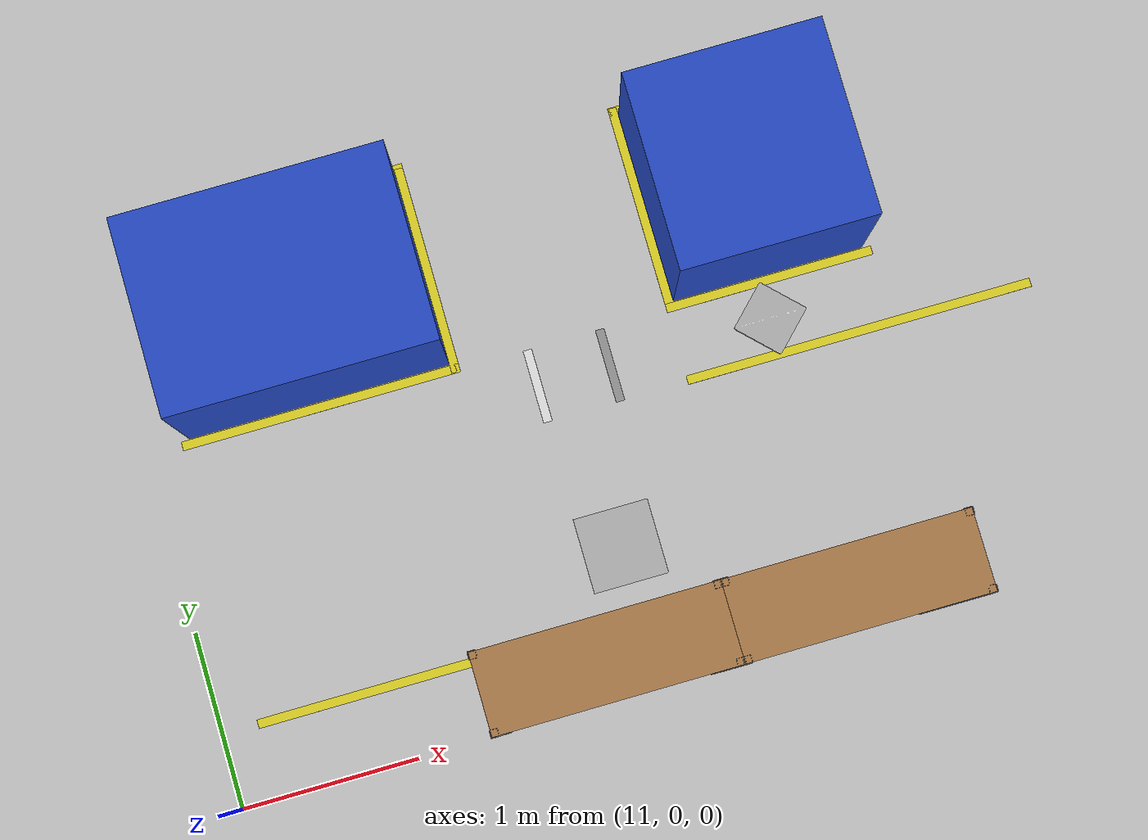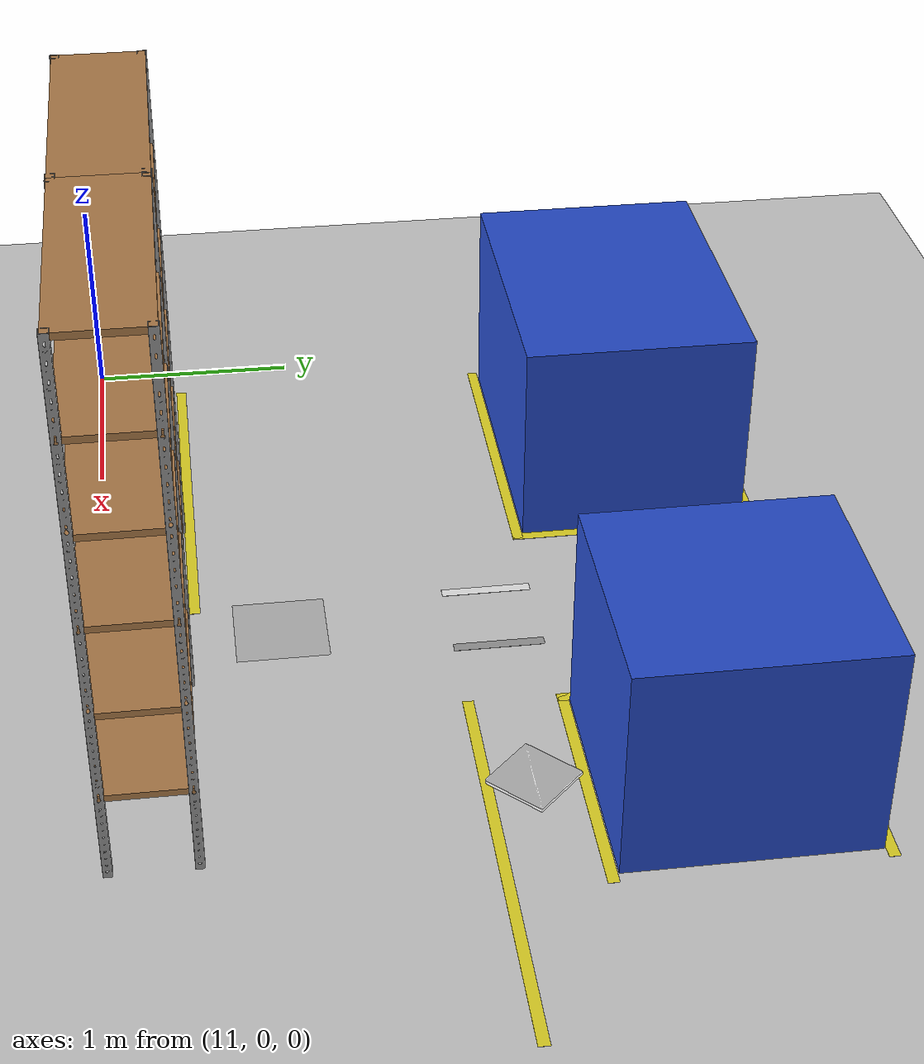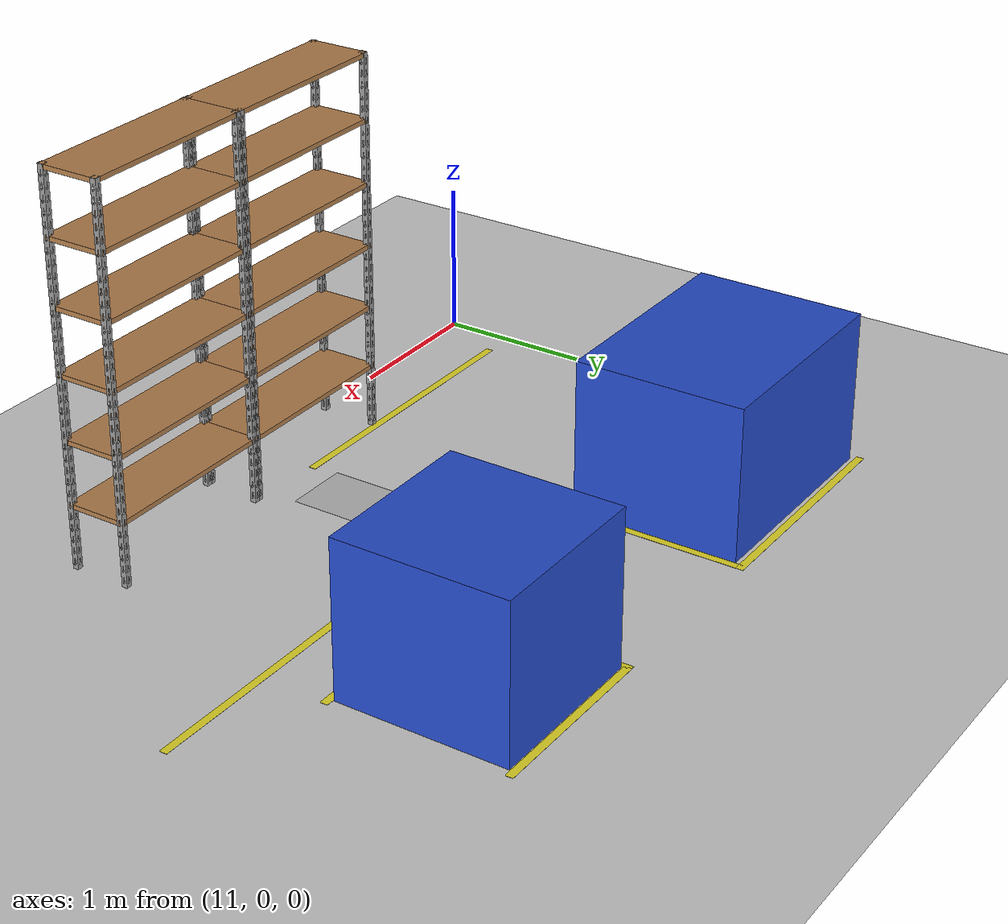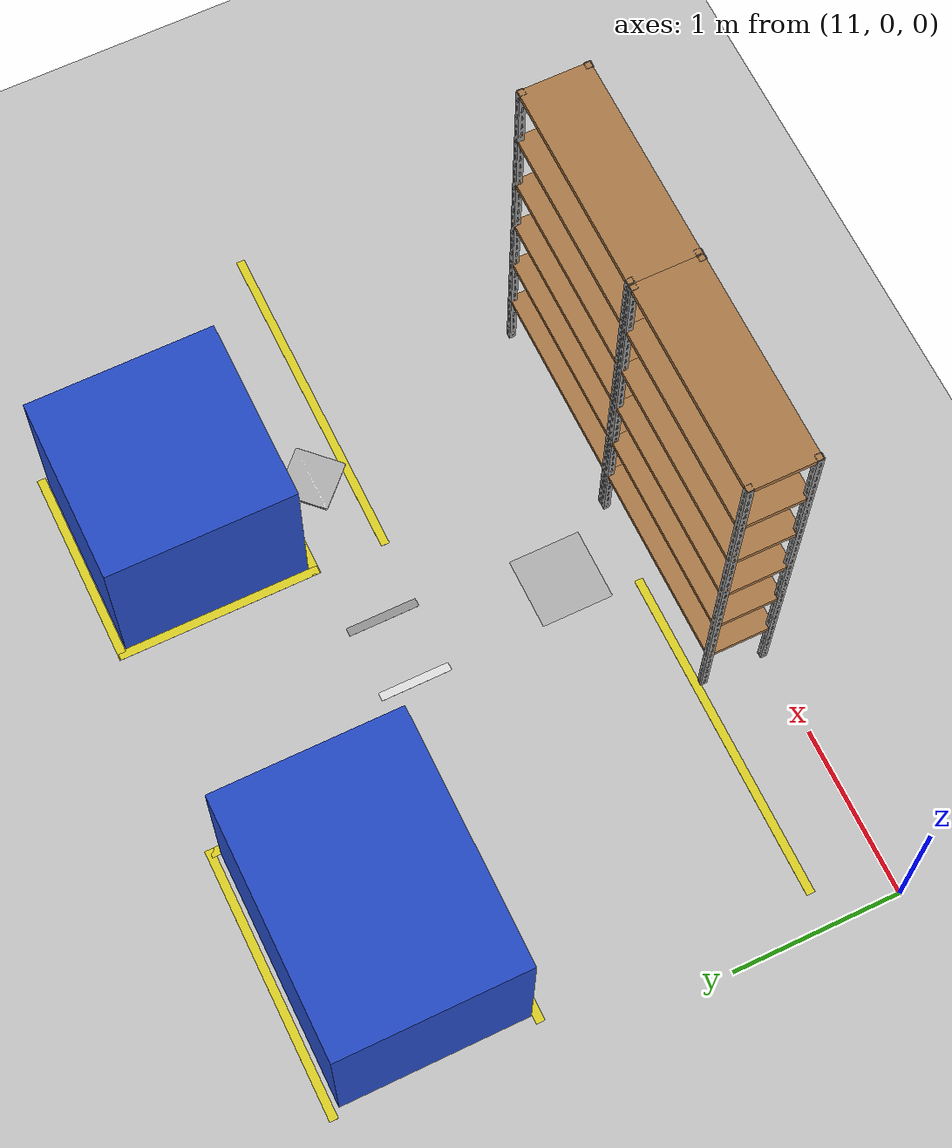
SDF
<sdf version="1.6">
 <world name="default">
  <model name="ground_plane">
   <static>1</static>
   <link name="link">
    <collision name="collision">
     <geometry><plane><normal>0 0 1</normal><size>100 100</size></plane></geometry>
     <surface><friction><ode><mu>100</mu><mu2>50</mu2></ode></friction></surface>
    </collision>
    <visual name="visual">
     <cast_shadows>0</cast_shadows>
     <geometry><plane><normal>0 0 1</normal><size>100 100</size></plane></geometry>
     <material>
      <script><uri>file://media/materials/scripts/gazebo.material</uri><name>Gazebo/Grey</name></script>
     </material>
    </visual>
   </link>
  </model>
  <model name="shelfDemo_120cmx40cm_1">
   <link name="link_0">
    <inertial>
     <mass>1</mass>
     <inertia>
      <ixx>0.166667</ixx>
      <ixy>0</ixy>
      <ixz>0</ixz>
      <iyy>0.166667</iyy>
      <iyz>0</iyz>
      <izz>0.166667</izz>
     </inertia>
    </inertial>
    <visual name="visual">
     <pose>0 0 0.414 0 -0 0</pose>
     <geometry><box><size>1.2 0.4 0.03</size></box></geometry>
     <material>
      <lighting>1</lighting>
      <script><uri>file://media/materials/scripts/gazebo.material</uri><name>Gazebo/WoodFloor</name></script>
      <shader type="pixel"><normal_map>__default__</normal_map></shader>
     </material>
    </visual>
    <visual name="ModelPreview_0::link_0::visual_2">
     <pose>0 0 0.828 0 -0 0</pose>
     <geometry><box><size>1.2 0.4 0.03</size></box></geometry>
     <material>
      <lighting>1</lighting>
      <script><uri>file://media/materials/scripts/gazebo.material</uri><name>Gazebo/WoodFloor</name></script>
      <shader type="pixel"><normal_map>__default__</normal_map></shader>
     </material>
    </visual>
    <visual name="ModelPreview_0::link_0::visual_3">
     <pose>0 0 1.242 0 -0 0</pose>
     <geometry><box><size>1.2 0.4 0.03</size></box></geometry>
     <material>
      <lighting>1</lighting>
      <script><uri>file://media/materials/scripts/gazebo.material</uri><name>Gazebo/WoodFloor</name></script>
      <shader type="pixel"><normal_map>__default__</normal_map></shader>
     </material>
    </visual>
    <visual name="ModelPreview_0::link_0::visual_4">
     <pose>0 0 1.656 0 -0 0</pose>
     <geometry><box><size>1.2 0.4 0.03</size></box></geometry>
     <material>
      <lighting>1</lighting>
      <script><uri>file://media/materials/scripts/gazebo.material</uri><name>Gazebo/WoodFloor</name></script>
      <shader type="pixel"><normal_map>__default__</normal_map></shader>
     </material>
    </visual>
    <visual name="ModelPreview_0::link_0::visual_5">
     <pose>0 0 2.07 0 -0 0</pose>
     <geometry><box><size>1.2 0.4 0.03</size></box></geometry>
     <material>
      <lighting>1</lighting>
      <script><uri>file://media/materials/scripts/gazebo.material</uri><name>Gazebo/WoodFloor</name></script>
      <shader type="pixel"><normal_map>__default__</normal_map></shader>
     </material>
    </visual>
    <visual name="ModelPreview_0::link_0::visual_6">
     <pose>0 0 2.484 0 -0 0</pose>
     <geometry><box><size>1.2 0.4 0.03</size></box></geometry>
     <material>
      <lighting>1</lighting>
      <script><uri>file://media/materials/scripts/gazebo.material</uri><name>Gazebo/WoodFloor</name></script>
      <shader type="pixel"><normal_map>__default__</normal_map></shader>
     </material>
    </visual>
    <visual name="ModelPreview_0::link_0::visual_7">
     <pose>0.585 0.185 0 0 -0 0</pose>
     <geometry>
      <mesh><uri>model://shelfDemo_91/model/2-5mDirek.stl</uri><scale>0.0008 0.0008 0.001</scale></mesh>
     </geometry>
     <material>
      <lighting>1</lighting>
      <script><uri>file://media/materials/scripts/gazebo.material</uri><name>Gazebo/Grey</name></script>
      <shader type="pixel"><normal_map>__default__</normal_map></shader>
      <ambient>0.3 0.3 0.3 1</ambient>
      <diffuse>0.7 0.7 0.7 1</diffuse>
      <specular>0.01 0.01 0.01 1</specular>
      <emissive>0 0 0 1</emissive>
     </material>
    </visual>
    <visual name="ModelPreview_0::link_0::visual_8">
     <pose>-0.585 0.185 0 0 -0 0</pose>
     <geometry>
      <mesh><uri>model://shelfDemo_91/model/2-5mDirek.stl</uri><scale>0.0008 0.0008 0.001</scale></mesh>
     </geometry>
     <material>
      <lighting>1</lighting>
      <script><uri>file://media/materials/scripts/gazebo.material</uri><name>Gazebo/Grey</name></script>
      <shader type="pixel"><normal_map>__default__</normal_map></shader>
      <ambient>0.3 0.3 0.3 1</ambient>
      <diffuse>0.7 0.7 0.7 1</diffuse>
      <specular>0.01 0.01 0.01 1</specular>
      <emissive>0 0 0 1</emissive>
     </material>
    </visual>
    <visual name="ModelPreview_0::link_0::visual_9">
     <pose>0.585 -0.185 0 0 -0 0</pose>
     <geometry>
      <mesh><uri>model://shelfDemo_91/model/2-5mDirek.stl</uri><scale>0.0008 0.0008 0.001</scale></mesh>
     </geometry>
     <material>
      <lighting>1</lighting>
      <script><uri>file://media/materials/scripts/gazebo.material</uri><name>Gazebo/Grey</name></script>
      <shader type="pixel"><normal_map>__default__</normal_map></shader>
      <ambient>0.3 0.3 0.3 1</ambient>
      <diffuse>0.7 0.7 0.7 1</diffuse>
      <specular>0.01 0.01 0.01 1</specular>
      <emissive>0 0 0 1</emissive>
     </material>
    </visual>
    <visual name="ModelPreview_0::link_0::visual_10">
     <pose>-0.585 -0.185 0 0 -0 0</pose>
     <geometry>
      <mesh><uri>model://shelfDemo_91/model/2-5mDirek.stl</uri><scale>0.0008 0.0008 0.001</scale></mesh>
     </geometry>
     <material>
      <lighting>1</lighting>
      <script><uri>file://media/materials/scripts/gazebo.material</uri><name>Gazebo/Grey</name></script>
      <shader type="pixel"><normal_map>__default__</normal_map></shader>
      <ambient>0.3 0.3 0.3 1</ambient>
      <diffuse>0.7 0.7 0.7 1</diffuse>
      <specular>0.01 0.01 0.01 1</specular>
      <emissive>0 0 0 1</emissive>
     </material>
    </visual>
    <collision name="collision_6">
     <pose>0.585 0.185 1.25 0 -0 0</pose>
     <geometry><box><size>0.02 0.02 2.5</size></box></geometry>
    </collision>
    <collision name="collision_7">
     <pose>0.585 -0.185 1.25 0 -0 0</pose>
     <geometry><box><size>0.02 0.02 2.5</size></box></geometry>
    </collision>
    <collision name="collision_8">
     <pose>-0.585 0.185 1.25 0 -0 0</pose>
     <geometry><box><size>0.02 0.02 2.5</size></box></geometry>
    </collision>
    <collision name="collision">
     <pose>0 0 0.414 0 -0 0</pose>
     <geometry><box><size>1.2 0.4 0.03</size></box></geometry>
    </collision>
    <collision name="collision_1">
     <pose>0 0 0.828 0 -0 0</pose>
     <geometry><box><size>1.2 0.4 0.03</size></box></geometry>
    </collision>
    <collision name="collision_2">
     <pose>0 0 1.242 0 -0 0</pose>
     <geometry><box><size>1.2 0.4 0.03</size></box></geometry>
    </collision>
    <collision name="collision_3">
     <pose>0 0 1.656 0 -0 0</pose>
     <geometry><box><size>1.2 0.4 0.03</size></box></geometry>
    </collision>
    <collision name="collision_4">
     <pose>0 0 2.07 0 -0 0</pose>
     <geometry><box><size>1.2 0.4 0.03</size></box></geometry>
    </collision>
    <collision name="collision_5">
     <pose>0 0 2.484 0 -0 0</pose>
     <geometry><box><size>1.2 0.4 0.03</size></box></geometry>
    </collision>
    <collision name="collision_9">
     <pose>-0.585 -0.185 1.25 0 -0 0</pose>
     <geometry><box><size>0.02 0.02 2.5</size></box></geometry>
    </collision>
   </link>
   <static>1</static>
   <pose>13.1 0.2 0 0 -0 0</pose>
  </model>
  <model name="shelfDemo_120cmx40cm_2">
   <link name="link_0">
    <inertial>
     <mass>1</mass>
     <inertia>
      <ixx>0.166667</ixx>
      <ixy>0</ixy>
      <ixz>0</ixz>
      <iyy>0.166667</iyy>
      <iyz>0</iyz>
      <izz>0.166667</izz>
     </inertia>
    </inertial>
    <visual name="visual">
     <pose>0 0 0.414 0 -0 0</pose>
     <geometry><box><size>1.2 0.4 0.03</size></box></geometry>
     <material>
      <lighting>1</lighting>
      <script><uri>file://media/materials/scripts/gazebo.material</uri><name>Gazebo/WoodFloor</name></script>
      <shader type="pixel"><normal_map>__default__</normal_map></shader>
     </material>
    </visual>
    <visual name="ModelPreview_0::link_0::visual_2">
     <pose>0 0 0.828 0 -0 0</pose>
     <geometry><box><size>1.2 0.4 0.03</size></box></geometry>
     <material>
      <lighting>1</lighting>
      <script><uri>file://media/materials/scripts/gazebo.material</uri><name>Gazebo/WoodFloor</name></script>
      <shader type="pixel"><normal_map>__default__</normal_map></shader>
     </material>
    </visual>
    <visual name="ModelPreview_0::link_0::visual_3">
     <pose>0 0 1.242 0 -0 0</pose>
     <geometry><box><size>1.2 0.4 0.03</size></box></geometry>
     <material>
      <lighting>1</lighting>
      <script><uri>file://media/materials/scripts/gazebo.material</uri><name>Gazebo/WoodFloor</name></script>
      <shader type="pixel"><normal_map>__default__</normal_map></shader>
     </material>
    </visual>
    <visual name="ModelPreview_0::link_0::visual_4">
     <pose>0 0 1.656 0 -0 0</pose>
     <geometry><box><size>1.2 0.4 0.03</size></box></geometry>
     <material>
      <lighting>1</lighting>
      <script><uri>file://media/materials/scripts/gazebo.material</uri><name>Gazebo/WoodFloor</name></script>
      <shader type="pixel"><normal_map>__default__</normal_map></shader>
     </material>
    </visual>
    <visual name="ModelPreview_0::link_0::visual_5">
     <pose>0 0 2.07 0 -0 0</pose>
     <geometry><box><size>1.2 0.4 0.03</size></box></geometry>
     <material>
      <lighting>1</lighting>
      <script><uri>file://media/materials/scripts/gazebo.material</uri><name>Gazebo/WoodFloor</name></script>
      <shader type="pixel"><normal_map>__default__</normal_map></shader>
     </material>
    </visual>
    <visual name="ModelPreview_0::link_0::visual_6">
     <pose>0 0 2.484 0 -0 0</pose>
     <geometry><box><size>1.2 0.4 0.03</size></box></geometry>
     <material>
      <lighting>1</lighting>
      <script><uri>file://media/materials/scripts/gazebo.material</uri><name>Gazebo/WoodFloor</name></script>
      <shader type="pixel"><normal_map>__default__</normal_map></shader>
     </material>
    </visual>
    <visual name="ModelPreview_0::link_0::visual_7">
     <pose>0.585 0.185 0 0 -0 0</pose>
     <geometry>
      <mesh><uri>model://shelfDemo_91/model/2-5mDirek.stl</uri><scale>0.0008 0.0008 0.001</scale></mesh>
     </geometry>
     <material>
      <lighting>1</lighting>
      <script><uri>file://media/materials/scripts/gazebo.material</uri><name>Gazebo/Grey</name></script>
      <shader type="pixel"><normal_map>__default__</normal_map></shader>
      <ambient>0.3 0.3 0.3 1</ambient>
      <diffuse>0.7 0.7 0.7 1</diffuse>
      <specular>0.01 0.01 0.01 1</specular>
      <emissive>0 0 0 1</emissive>
     </material>
    </visual>
    <visual name="ModelPreview_0::link_0::visual_8">
     <pose>-0.585 0.185 0 0 -0 0</pose>
     <geometry>
      <mesh><uri>model://shelfDemo_91/model/2-5mDirek.stl</uri><scale>0.0008 0.0008 0.001</scale></mesh>
     </geometry>
     <material>
      <lighting>1</lighting>
      <script><uri>file://media/materials/scripts/gazebo.material</uri><name>Gazebo/Grey</name></script>
      <shader type="pixel"><normal_map>__default__</normal_map></shader>
      <ambient>0.3 0.3 0.3 1</ambient>
      <diffuse>0.7 0.7 0.7 1</diffuse>
      <specular>0.01 0.01 0.01 1</specular>
      <emissive>0 0 0 1</emissive>
     </material>
    </visual>
    <visual name="ModelPreview_0::link_0::visual_9">
     <pose>0.585 -0.185 0 0 -0 0</pose>
     <geometry>
      <mesh><uri>model://shelfDemo_91/model/2-5mDirek.stl</uri><scale>0.0008 0.0008 0.001</scale></mesh>
     </geometry>
     <material>
      <lighting>1</lighting>
      <script><uri>file://media/materials/scripts/gazebo.material</uri><name>Gazebo/Grey</name></script>
      <shader type="pixel"><normal_map>__default__</normal_map></shader>
      <ambient>0.3 0.3 0.3 1</ambient>
      <diffuse>0.7 0.7 0.7 1</diffuse>
      <specular>0.01 0.01 0.01 1</specular>
      <emissive>0 0 0 1</emissive>
     </material>
    </visual>
    <visual name="ModelPreview_0::link_0::visual_10">
     <pose>-0.585 -0.185 0 0 -0 0</pose>
     <geometry>
      <mesh><uri>model://shelfDemo_91/model/2-5mDirek.stl</uri><scale>0.0008 0.0008 0.001</scale></mesh>
     </geometry>
     <material>
      <lighting>1</lighting>
      <script><uri>file://media/materials/scripts/gazebo.material</uri><name>Gazebo/Grey</name></script>
      <shader type="pixel"><normal_map>__default__</normal_map></shader>
      <ambient>0.3 0.3 0.3 1</ambient>
      <diffuse>0.7 0.7 0.7 1</diffuse>
      <specular>0.01 0.01 0.01 1</specular>
      <emissive>0 0 0 1</emissive>
     </material>
    </visual>
    <collision name="collision_6">
     <pose>0.585 0.185 1.25 0 -0 0</pose>
     <geometry><box><size>0.02 0.02 2.5</size></box></geometry>
    </collision>
    <collision name="collision_7">
     <pose>0.585 -0.185 1.25 0 -0 0</pose>
     <geometry><box><size>0.02 0.02 2.5</size></box></geometry>
    </collision>
    <collision name="collision_8">
     <pose>-0.585 0.185 1.25 0 -0 0</pose>
     <geometry><box><size>0.02 0.02 2.5</size></box></geometry>
    </collision>
    <collision name="collision">
     <pose>0 0 0.414 0 -0 0</pose>
     <geometry><box><size>1.2 0.4 0.03</size></box></geometry>
    </collision>
    <collision name="collision_1">
     <pose>0 0 0.828 0 -0 0</pose>
     <geometry><box><size>1.2 0.4 0.03</size></box></geometry>
    </collision>
    <collision name="collision_2">
     <pose>0 0 1.242 0 -0 0</pose>
     <geometry><box><size>1.2 0.4 0.03</size></box></geometry>
    </collision>
    <collision name="collision_3">
     <pose>0 0 1.656 0 -0 0</pose>
     <geometry><box><size>1.2 0.4 0.03</size></box></geometry>
    </collision>
    <collision name="collision_4">
     <pose>0 0 2.07 0 -0 0</pose>
     <geometry><box><size>1.2 0.4 0.03</size></box></geometry>
    </collision>
    <collision name="collision_5">
     <pose>0 0 2.484 0 -0 0</pose>
     <geometry><box><size>1.2 0.4 0.03</size></box></geometry>
    </collision>
    <collision name="collision_9">
     <pose>-0.585 -0.185 1.25 0 -0 0</pose>
     <geometry><box><size>0.02 0.02 2.5</size></box></geometry>
    </collision>
   </link>
   <static>1</static>
   <pose>14.3 0.2 0 0 -0 0</pose>
  </model>
  <model name="makine1_160x120">
   <link name="link_1">
    <inertial>
     <mass>1</mass>
     <inertia>
      <ixx>0.166667</ixx>
      <ixy>0</ixy>
      <ixz>0</ixz>
      <iyy>0.166667</iyy>
      <iyz>0</iyz>
      <izz>0.166667</izz>
     </inertia>
    </inertial>
    <visual name="visual">
     <pose>0 0 0.5 0 -0 0</pose>
     <geometry><box><size>1.5 1.1 1</size></box></geometry>
     <material>
      <lighting>1</lighting>
      <script><uri>file://media/materials/scripts/gazebo.material</uri><name>Gazebo/Blue</name></script>
     </material>
    </visual>
    <collision name="collision">
     <pose>0 0 0.5 0 -0 0</pose>
     <geometry><box><size>1.5 1.1 1</size></box></geometry>
    </collision>
   </link>
   <static>1</static>
   <pose>12 2.6 0 0 -0 0</pose>
  </model>
  <model name="makine2_120x120">
   <link name="link_0">
    <inertial>
     <mass>1</mass>
     <inertia>
      <ixx>0.166667</ixx>
      <ixy>0</ixy>
      <ixz>0</ixz>
      <iyy>0.166667</iyy>
      <iyz>0</iyz>
      <izz>0.166667</izz>
     </inertia>
    </inertial>
    <visual name="visual">
     <pose>0 0 0.5 0 -0 0</pose>
     <geometry><box><size>1.1 1.1 1</size></box></geometry>
     <material>
      <lighting>1</lighting>
      <script><uri>file://media/materials/scripts/gazebo.material</uri><name>Gazebo/Blue</name></script>
     </material>
    </visual>
    <collision name="collision">
     <pose>0 0 0.5 0 -0 0</pose>
     <geometry><box><size>1.1 1.1 1</size></box></geometry>
    </collision>
   </link>
   <static>1</static>
   <pose>14.6 2.6 0 0 -0 0</pose>
  </model>
  <model name="line160cm">
   <link name="link_1">
    <inertial>
     <mass>1</mass>
     <inertia>
      <ixx>0.166667</ixx>
      <ixy>0</ixy>
      <ixz>0</ixz>
      <iyy>0.166667</iyy>
      <iyz>0</iyz>
      <izz>0.166667</izz>
     </inertia>
    </inertial>
    <visual name="visual">
     <geometry><box><size>1.6 0.05 0.001</size></box></geometry>
     <material>
      <script><uri>file://media/materials/scripts/gazebo.material</uri><name>Gazebo/Yellow</name></script>
     </material>
    </visual>
    <collision name="collision"><geometry><box><size>1.6 0.05 1e-05</size></box></geometry></collision>
   </link>
   <static>1</static>
   <pose>12 2.02 0 0 -0 0</pose>
  </model>
  <model name="line160cm_0">
   <link name="link_1">
    <inertial>
     <mass>1</mass>
     <inertia>
      <ixx>0.166667</ixx>
      <ixy>0</ixy>
      <ixz>0</ixz>
      <iyy>0.166667</iyy>
      <iyz>0</iyz>
      <izz>0.166667</izz>
     </inertia>
    </inertial>
    <visual name="visual">
     <geometry><box><size>1.6 0.05 0.001</size></box></geometry>
     <material>
      <script><uri>file://media/materials/scripts/gazebo.material</uri><name>Gazebo/Yellow</name></script>
     </material>
    </visual>
    <collision name="collision"><geometry><box><size>1.6 0.05 1e-05</size></box></geometry></collision>
   </link>
   <static>1</static>
   <pose>12 3.2 0 0 -0 0</pose>
  </model>
  <model name="line120cm">
   <link name="link_1">
    <inertial>
     <mass>1</mass>
     <inertia>
      <ixx>0.166667</ixx>
      <ixy>0</ixy>
      <ixz>0</ixz>
      <iyy>0.166667</iyy>
      <iyz>0</iyz>
      <izz>0.166667</izz>
     </inertia>
    </inertial>
    <visual name="visual">
     <geometry><box><size>1.2 0.05 0.001</size></box></geometry>
     <material>
      <script><uri>file://media/materials/scripts/gazebo.material</uri><name>Gazebo/Yellow</name></script>
     </material>
    </visual>
    <collision name="collision"><geometry><box><size>1.2 0.05 1e-05</size></box></geometry></collision>
   </link>
   <static>1</static>
   <pose>12.775 2.6 0 0 -0 1.5708</pose>
  </model>
  <model name="line120cm_2">
   <link name="link_1">
    <inertial>
     <mass>1</mass>
     <inertia>
      <ixx>0.166667</ixx>
      <ixy>0</ixy>
      <ixz>0</ixz>
      <iyy>0.166667</iyy>
      <iyz>0</iyz>
      <izz>0.166667</izz>
     </inertia>
    </inertial>
    <visual name="visual">
     <geometry><box><size>1.2 0.05 0.001</size></box></geometry>
     <material>
      <script><uri>file://media/materials/scripts/gazebo.material</uri><name>Gazebo/Yellow</name></script>
     </material>
    </visual>
    <collision name="collision"><geometry><box><size>1.2 0.05 1e-05</size></box></geometry></collision>
   </link>
   <static>1</static>
   <pose>14.6 2.02 0 0 -0 0</pose>
  </model>
  <model name="line120cm_3">
   <link name="link_1">
    <inertial>
     <mass>1</mass>
     <inertia>
      <ixx>0.166667</ixx>
      <ixy>0</ixy>
      <ixz>0</ixz>
      <iyy>0.166667</iyy>
      <iyz>0</iyz>
      <izz>0.166667</izz>
     </inertia>
    </inertial>
    <visual name="visual">
     <geometry><box><size>1.2 0.05 0.001</size></box></geometry>
     <material>
      <script><uri>file://media/materials/scripts/gazebo.material</uri><name>Gazebo/Yellow</name></script>
     </material>
    </visual>
    <collision name="collision"><geometry><box><size>1.2 0.05 1e-05</size></box></geometry></collision>
   </link>
   <static>1</static>
   <pose>14.025 2.6 0 0 -0 1.5708</pose>
  </model>
  <model name="line120cm_4">
   <link name="link_1">
    <inertial>
     <mass>1</mass>
     <inertia>
      <ixx>0.166667</ixx>
      <ixy>0</ixy>
      <ixz>0</ixz>
      <iyy>0.166667</iyy>
      <iyz>0</iyz>
      <izz>0.166667</izz>
     </inertia>
    </inertial>
    <visual name="visual">
     <geometry><box><size>1.2 0.05 0.001</size></box></geometry>
     <material>
      <script><uri>file://media/materials/scripts/gazebo.material</uri><name>Gazebo/Yellow</name></script>
     </material>
    </visual>
    <collision name="collision"><geometry><box><size>1.2 0.05 1e-05</size></box></geometry></collision>
   </link>
   <static>1</static>
   <pose>14.6 3.18 0 0 -0 0</pose>
  </model>
  <model name="newPedestrianSign_0">
   <link name="link_7">
    <inertial>
     <mass>1</mass>
     <inertia>
      <ixx>0.166667</ixx>
      <ixy>0</ixy>
      <ixz>0</ixz>
      <iyy>0.166667</iyy>
      <iyz>0</iyz>
      <izz>0.166667</izz>
     </inertia>
    </inertial>
    <visual name="visual">
     <pose>-0.2 -0.2 0 -1.5708 -0 0</pose>
     <geometry>
      <mesh><uri>model://newPedestrianSign/model/model.dae</uri><scale>0.5 0.5 0.5</scale></mesh>
     </geometry>
     <material><lighting>1</lighting></material>
    </visual>
    <collision name="collision">
     <pose>0 0 0 0 -0 0.785398</pose>
     <geometry><box><size>0.28 0.28 1e-05</size></box></geometry>
    </collision>
   </link>
   <static>1</static>
   <pose>14.6 1.85 0 0 -0 0</pose>
  </model>
  <model name="whiteLine_42_1">
   <link name="link_3">
    <inertial>
     <mass>1</mass>
     <inertia>
      <ixx>0.166667</ixx>
      <ixy>0</ixy>
      <ixz>0</ixz>
      <iyy>0.166667</iyy>
      <iyz>0</iyz>
      <izz>0.166667</izz>
     </inertia>
    </inertial>
    <visual name="visual">
     <pose>-0.21 0 0 0 -0 0</pose>
     <geometry><box><size>0.05 0.42 0.001</size></box></geometry>
     <material>
      <lighting>1</lighting>
      <script><uri>file://media/materials/scripts/gazebo.material</uri><name>Gazebo/White</name></script>
      <shader type="pixel"><normal_map>__default__</normal_map></shader>
      <ambient>1 1 1 1</ambient>
      <diffuse>1 1 1 1</diffuse>
      <specular>0.01 0.01 0.01 1</specular>
      <emissive>0 0 0 1</emissive>
     </material>
    </visual>
    <visual name="ModelPreview_7::link_3::visual_1">
     <pose>0.21 0 0 0 -0 0</pose>
     <geometry><box><size>0.05 0.42 0.001</size></box></geometry>
     <material>
      <lighting>1</lighting>
      <script><uri>file://media/materials/scripts/gazebo.material</uri><name>Gazebo/Grey</name></script>
      <shader type="pixel"><normal_map>__default__</normal_map></shader>
      <ambient>1 1 1 1</ambient>
      <diffuse>1 1 1 1</diffuse>
      <specular>0.01 0.01 0.01 1</specular>
      <emissive>0 0 0 1</emissive>
     </material>
    </visual>
    <collision name="collision">
     <pose>-0.21 0 0 0 -0 0</pose>
     <geometry><box><size>0.05 0.42 1e-05</size></box></geometry>
    </collision>
    <collision name="collision_1">
     <pose>0.21 0 0 0 -0 0</pose>
     <geometry><box><size>0.05 0.42 1e-05</size></box></geometry>
    </collision>
   </link>
   <static>1</static>
   <pose>13.4 1.8 0 0 -0 0</pose>
  </model>
  <model name="forkliftRoadSign_1">
   <link name="link_7">
    <inertial>
     <mass>1</mass>
     <inertia>
      <ixx>0.166667</ixx>
      <ixy>0</ixy>
      <ixz>0</ixz>
      <iyy>0.166667</iyy>
      <iyz>0</iyz>
      <izz>0.166667</izz>
     </inertia>
    </inertial>
    <visual name="visual">
     <pose>-0.2 -0.2 0.01 -1.5708 -0 0</pose>
     <geometry>
      <mesh><uri>model://forkliftRoadSign/model/model.dae</uri><scale>0.7 0.7 0.7</scale></mesh>
     </geometry>
     <material><lighting>1</lighting></material>
    </visual>
    <collision name="collision"><geometry><box><size>0.4 0.4 1e-05</size></box></geometry></collision>
   </link>
   <static>1</static>
   <pose>13.4 0.8 0 0 -0 1.5708</pose>
  </model>
  <model name="line2m_2">
   <link name="link_0">
    <inertial>
     <mass>1</mass>
     <inertia>
      <ixx>0.166667</ixx>
      <ixy>0</ixy>
      <ixz>0</ixz>
      <iyy>0.166667</iyy>
      <iyz>0</iyz>
      <izz>0.166667</izz>
     </inertia>
    </inertial>
    <visual name="visual">
     <geometry><box><size>2 0.05 0.001</size></box></geometry>
     <material>
      <lighting>1</lighting>
      <script><uri>file://media/materials/scripts/gazebo.material</uri><name>Gazebo/Yellow</name></script>
     </material>
    </visual>
    <collision name="collision"><geometry><box><size>2 0.05 1e-05</size></box></geometry></collision>
   </link>
   <static>1</static>
   <pose>15 1.6 0 0 -0 0</pose>
  </model>
  <model name="line2m_3">
   <link name="link_0">
    <inertial>
     <mass>1</mass>
     <inertia>
      <ixx>0.166667</ixx>
      <ixy>0</ixy>
      <ixz>0</ixz>
      <iyy>0.166667</iyy>
      <iyz>0</iyz>
      <izz>0.166667</izz>
     </inertia>
    </inertial>
    <visual name="visual">
     <geometry><box><size>2 0.05 0.001</size></box></geometry>
     <material>
      <lighting>1</lighting>
      <script><uri>file://media/materials/scripts/gazebo.material</uri><name>Gazebo/Yellow</name></script>
     </material>
    </visual>
    <collision name="collision"><geometry><box><size>2 0.05 1e-05</size></box></geometry></collision>
   </link>
   <static>1</static>
   <pose>12.2 0.425 0 0 -0 0</pose>
  </model>
 </world>
</sdf>
